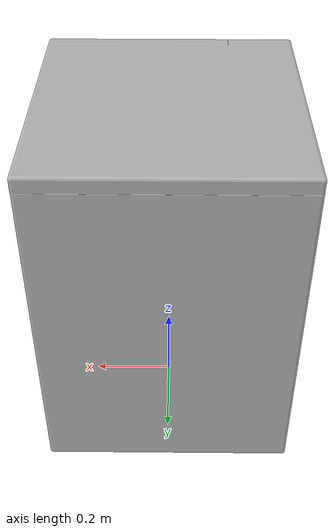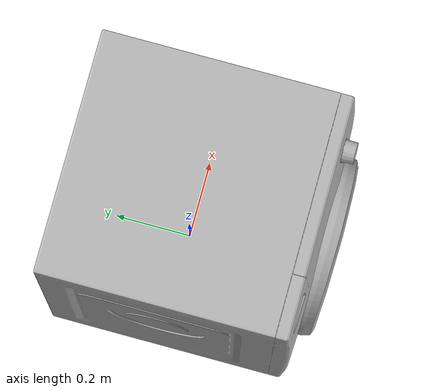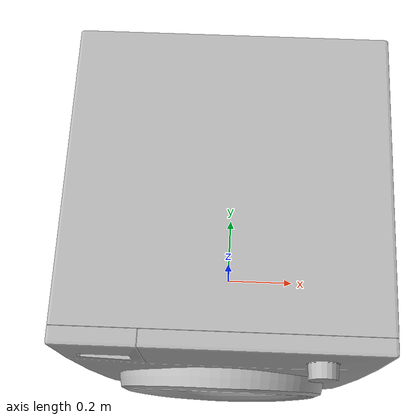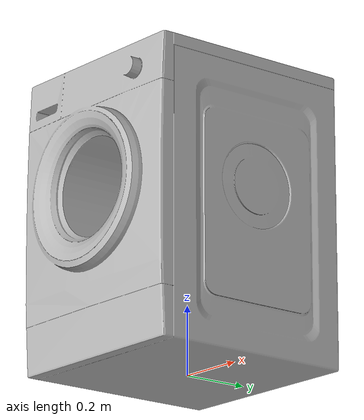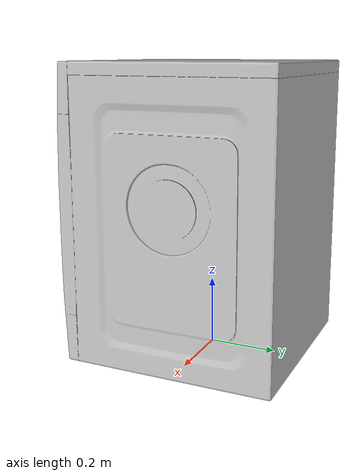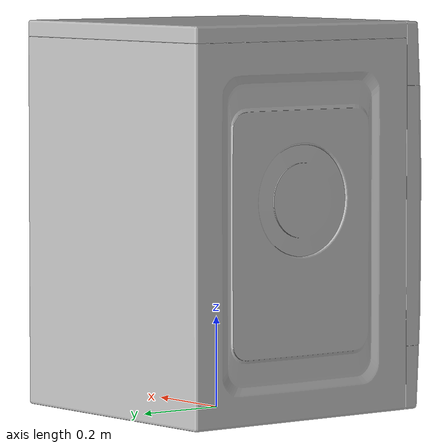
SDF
<?xml version='1.0'?>
<sdf version='1.6'>
  <model name='17_ClothesWasher'>
    <link name='body'>
	  <inertial>
        <mass>60</mass>
        <pose frame=''>0 0 0 0 0 0</pose>
        <inertia>
          <ixx>5.8569999</ixx>
          <ixy>0</ixy>
          <ixz>0</ixz>
          <iyy>5.4125</iyy>
          <iyz>0</iyz>
          <izz>4.0445</izz>
        </inertia>
      </inertial>
      <pose frame=''>0 0 0 0 -0 0</pose>
      <self_collide>0</self_collide>
      <kinematic>0</kinematic>
      <gravity>1</gravity>
      <visual name='visual'>
        <geometry>
          <mesh>
            <uri>model://ClothesWasher_a41462611906_lod0/meshes/visual_LowPoly_17_ClothesWasher.dae</uri>
          </mesh>
        </geometry>
		<meta> <layer> 1 </layer></meta>
      </visual>
      <collision name='collision_0'>
        <laser_retro>0</laser_retro>
        <max_contacts>10</max_contacts>
        <pose frame=''>0 0 0 0 -0 0</pose>
        <geometry>
          <mesh>
            <uri>model://ClothesWasher_a41462611906_lod0/meshes/collision_17_ClothesWasher.dae</uri>
            <scale>1 1 1</scale>
          </mesh>
        </geometry>
		<surface>
          <friction>
            <ode>
              <mu>0.6</mu>
              <mu2>0.6</mu2>
              <fdir1>0 0 0</fdir1>
              <slip1>0</slip1>
              <slip2>0</slip2>
            </ode>
            <torsional>
              <coefficient>1</coefficient>
              <patch_radius>0</patch_radius>
              <surface_radius>0</surface_radius>
              <use_patch_radius>1</use_patch_radius>
              <ode>
                <slip>0</slip>
              </ode>
            </torsional>
          </friction>
        </surface>
      </collision>
    </link>
    <static>true</static>
  </model>
</sdf>
